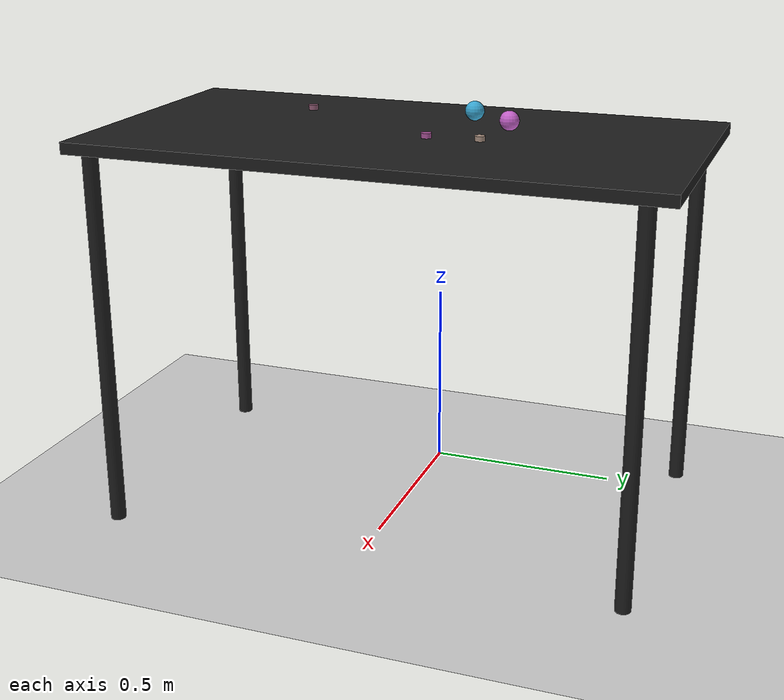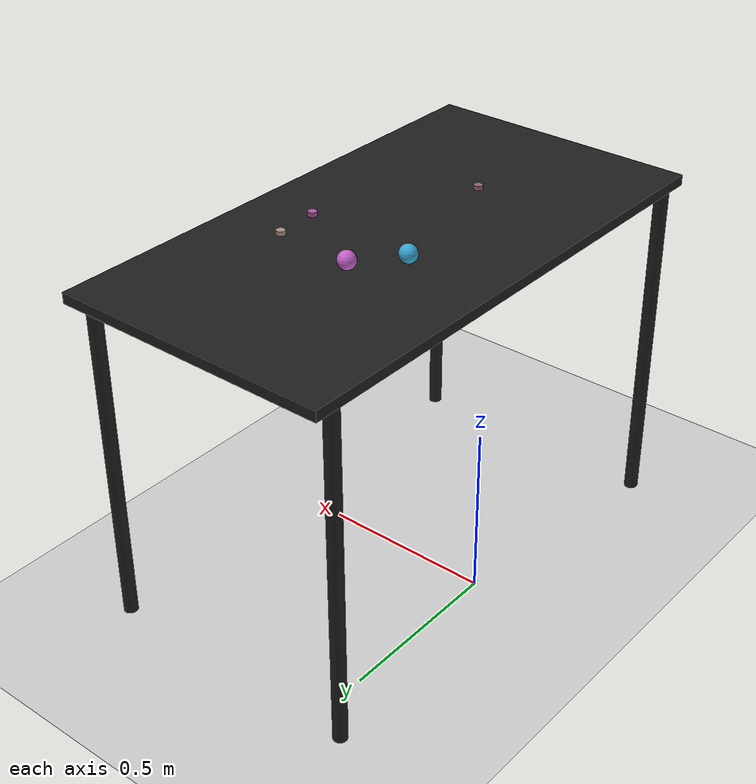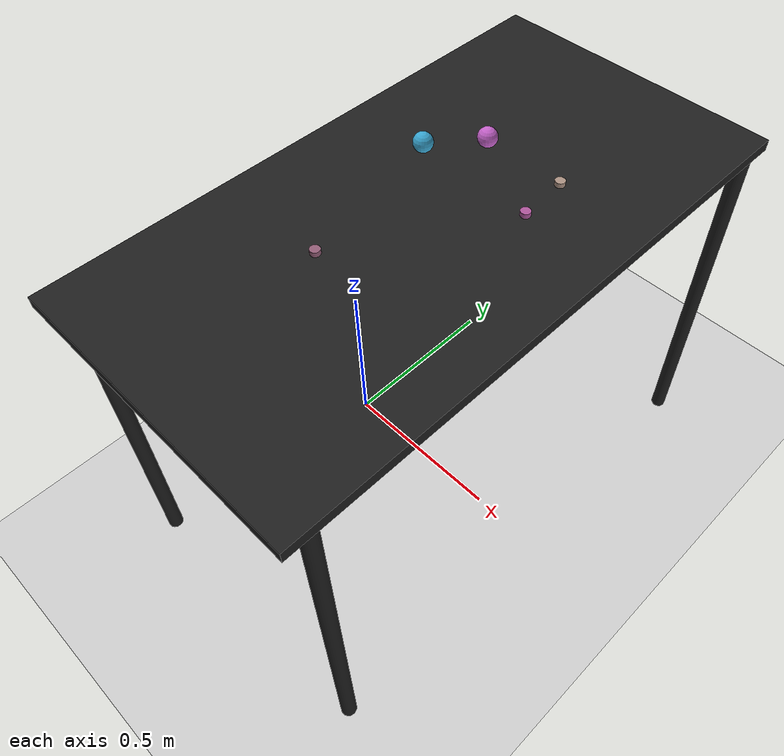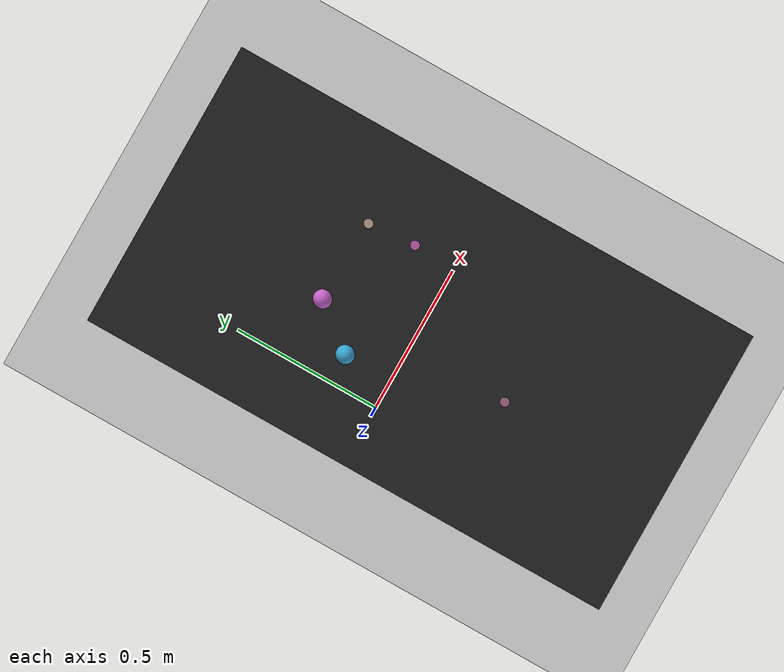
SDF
<?xml version="1.0" ?>
<sdf version="1.6">
  <world name="arm_world">
    <plugin filename="gz-sim-physics-system" name="gz::sim::systems::Physics">
      <engine>
        <filename>libgz-physics-bullet-featherstone-plugin.so</filename>
      </engine>
    </plugin>
    <plugin filename="gz-sim-user-commands-system" name="gz::sim::systems::UserCommands"/>
    <plugin filename="gz-sim-scene-broadcaster-system" name="gz::sim::systems::SceneBroadcaster"/>
    <plugin filename="gz-sim-sensors-system" name="gz::sim::systems::Sensors">
      <render_engine>ogre2</render_engine>
    </plugin>
    <gravity>0.0 0.0 -9.8</gravity>
    <scene>
      <shadows>false</shadows>
    </scene>
    <gui>
      <camera name="user_camera">
        <pose>0.75 -0.75 1.4 0 0.29 2.21</pose>
      </camera>
    </gui>
    <include>
      <uri>https://fuel.gazebosim.org/1.0/OpenRobotics/models/Sun</uri>
    </include>
    <model name="table">
      <static>true</static>
      <include>
        <uri>model://table</uri>
      </include>
      <pose>0.29 0 0 0 0 1.5708</pose>
    </model>
    <model name="ground_plane">
      <static>true</static>
      <link name="link">
        <collision name="collision">
          <geometry>
            <plane>
              <normal>0 0 1</normal>
            </plane>
          </geometry>
          <surface>
            <friction>
              <ode>
                <mu>1.0</mu>
                <mu2>1.0</mu2>
              </ode>
            </friction>
          </surface>
        </collision>
        <visual name="visual">
          <geometry>
            <plane>
              <normal>0 0 1</normal>
              <size>100 100</size>
            </plane>
          </geometry>
          <material>
            <ambient>0.8 0.8 0.8 1</ambient>
            <diffuse>0.8 0.8 0.8 1</diffuse>
            <specular>0.8 0.8 0.8 1</specular>
          </material>
        </visual>
      </link>
    </model>
    <model name="cylinder_s_0">
      <pose>0.233 -0.277 1.05 0 0 6.23</pose>
      <link name="cylinder_s_0_link">
        <inertial>
          <mass>0.05</mass>
          <inertia>
            <ixx>2.04e-7</ixx>
            <iyy>2.04e-7</iyy>
            <izz>3.9e-8</izz>
            <ixy>0</ixy>
            <ixz>0</ixz>
            <iyz>0</iyz>
          </inertia>
        </inertial>
        <collision name="cylinder_s_0_collision">
          <geometry>
            <cylinder>
              <radius>0.0125</radius>
              <length>0.0125</length>
            </cylinder>
          </geometry>
          <surface>
            <friction>
              <ode>
                <mu>0.8</mu>
                <mu2>0.8</mu2>
                <fdir1>0 0 1</fdir1>
                <slip1>0.001</slip1>
                <slip2>0.001</slip2>
              </ode>
              <torsional>
                <coefficient>0.1</coefficient>
                <surface_radius>0.015</surface_radius>
                <use_patch_radius>true</use_patch_radius>
              </torsional>
            </friction>
            <contact>
              <ode>
                <kp>1e5</kp>
                <kd>10</kd>
                <max_vel>0.1</max_vel>
                <min_depth>0.001</min_depth>
                <soft_cfm>0.01</soft_cfm>
                <soft_erp>0.2</soft_erp>
              </ode>
            </contact>
            <bounce>
              <restitution_coefficient>0.2</restitution_coefficient>
              <threshold>0.01</threshold>
            </bounce>
          </surface>
        </collision>
        <visual name="cylinder_s_0_visual">
          <geometry>
            <cylinder>
              <radius>0.0125</radius>
              <length>0.0125</length>
            </cylinder>
          </geometry>
          <material>
            <ambient>0.57 0.36 0.46 1</ambient>
            <diffuse>0.57 0.36 0.46 1</diffuse>
          </material>
        </visual>
        <velocity_decay>
          <linear>1</linear>
          <angular>1</angular>
        </velocity_decay>
      </link>
    </model>
    <model name="sphere_m_1">
      <pose>0.233 0.252 1.05 0 0 4.65</pose>
      <link name="sphere_m_1_link">
        <inertial>
          <mass>0.05</mass>
          <inertia>
            <ixx>2.04e-7</ixx>
            <iyy>2.04e-7</iyy>
            <izz>3.9e-8</izz>
            <ixy>0</ixy>
            <ixz>0</ixz>
            <iyz>0</iyz>
          </inertia>
        </inertial>
        <collision name="sphere_m_1_collision">
          <geometry>
            <sphere>
              <radius>0.025</radius>
            </sphere>
          </geometry>
          <surface>
            <friction>
              <ode>
                <mu>0.8</mu>
                <mu2>0.8</mu2>
                <fdir1>0 0 1</fdir1>
                <slip1>0.001</slip1>
                <slip2>0.001</slip2>
              </ode>
              <torsional>
                <coefficient>0.1</coefficient>
                <surface_radius>0.015</surface_radius>
                <use_patch_radius>true</use_patch_radius>
              </torsional>
            </friction>
            <contact>
              <ode>
                <kp>1e5</kp>
                <kd>10</kd>
                <max_vel>0.1</max_vel>
                <min_depth>0.001</min_depth>
                <soft_cfm>0.01</soft_cfm>
                <soft_erp>0.2</soft_erp>
              </ode>
            </contact>
            <bounce>
              <restitution_coefficient>0.2</restitution_coefficient>
              <threshold>0.01</threshold>
            </bounce>
          </surface>
        </collision>
        <visual name="sphere_m_1_visual">
          <geometry>
            <sphere>
              <radius>0.025</radius>
            </sphere>
          </geometry>
          <material>
            <ambient>0.77 0.38 0.79 1</ambient>
            <diffuse>0.77 0.38 0.79 1</diffuse>
          </material>
        </visual>
        <velocity_decay>
          <linear>1</linear>
          <angular>1</angular>
        </velocity_decay>
      </link>
    </model>
    <model name="cylinder_s_2">
      <pose>0.466 0.115 1.05 0 0 0.97</pose>
      <link name="cylinder_s_2_link">
        <inertial>
          <mass>0.05</mass>
          <inertia>
            <ixx>2.04e-7</ixx>
            <iyy>2.04e-7</iyy>
            <izz>3.9e-8</izz>
            <ixy>0</ixy>
            <ixz>0</ixz>
            <iyz>0</iyz>
          </inertia>
        </inertial>
        <collision name="cylinder_s_2_collision">
          <geometry>
            <cylinder>
              <radius>0.0125</radius>
              <length>0.0125</length>
            </cylinder>
          </geometry>
          <surface>
            <friction>
              <ode>
                <mu>0.8</mu>
                <mu2>0.8</mu2>
                <fdir1>0 0 1</fdir1>
                <slip1>0.001</slip1>
                <slip2>0.001</slip2>
              </ode>
              <torsional>
                <coefficient>0.1</coefficient>
                <surface_radius>0.015</surface_radius>
                <use_patch_radius>true</use_patch_radius>
              </torsional>
            </friction>
            <contact>
              <ode>
                <kp>1e5</kp>
                <kd>10</kd>
                <max_vel>0.1</max_vel>
                <min_depth>0.001</min_depth>
                <soft_cfm>0.01</soft_cfm>
                <soft_erp>0.2</soft_erp>
              </ode>
            </contact>
            <bounce>
              <restitution_coefficient>0.2</restitution_coefficient>
              <threshold>0.01</threshold>
            </bounce>
          </surface>
        </collision>
        <visual name="cylinder_s_2_visual">
          <geometry>
            <cylinder>
              <radius>0.0125</radius>
              <length>0.0125</length>
            </cylinder>
          </geometry>
          <material>
            <ambient>0.67 0.33 0.6 1</ambient>
            <diffuse>0.67 0.33 0.6 1</diffuse>
          </material>
        </visual>
        <velocity_decay>
          <linear>1</linear>
          <angular>1</angular>
        </velocity_decay>
      </link>
    </model>
    <model name="cylinder_s_3">
      <pose>0.456 0.244 1.05 0 0 5.43</pose>
      <link name="cylinder_s_3_link">
        <inertial>
          <mass>0.05</mass>
          <inertia>
            <ixx>2.04e-7</ixx>
            <iyy>2.04e-7</iyy>
            <izz>3.9e-8</izz>
            <ixy>0</ixy>
            <ixz>0</ixz>
            <iyz>0</iyz>
          </inertia>
        </inertial>
        <collision name="cylinder_s_3_collision">
          <geometry>
            <cylinder>
              <radius>0.0125</radius>
              <length>0.0125</length>
            </cylinder>
          </geometry>
          <surface>
            <friction>
              <ode>
                <mu>0.8</mu>
                <mu2>0.8</mu2>
                <fdir1>0 0 1</fdir1>
                <slip1>0.001</slip1>
                <slip2>0.001</slip2>
              </ode>
              <torsional>
                <coefficient>0.1</coefficient>
                <surface_radius>0.015</surface_radius>
                <use_patch_radius>true</use_patch_radius>
              </torsional>
            </friction>
            <contact>
              <ode>
                <kp>1e5</kp>
                <kd>10</kd>
                <max_vel>0.1</max_vel>
                <min_depth>0.001</min_depth>
                <soft_cfm>0.01</soft_cfm>
                <soft_erp>0.2</soft_erp>
              </ode>
            </contact>
            <bounce>
              <restitution_coefficient>0.2</restitution_coefficient>
              <threshold>0.01</threshold>
            </bounce>
          </surface>
        </collision>
        <visual name="cylinder_s_3_visual">
          <geometry>
            <cylinder>
              <radius>0.0125</radius>
              <length>0.0125</length>
            </cylinder>
          </geometry>
          <material>
            <ambient>0.66 0.56 0.5 1</ambient>
            <diffuse>0.66 0.56 0.5 1</diffuse>
          </material>
        </visual>
        <velocity_decay>
          <linear>1</linear>
          <angular>1</angular>
        </velocity_decay>
      </link>
    </model>
    <model name="sphere_m_4">
      <pose>0.139 0.133 1.05 0 0 4.38</pose>
      <link name="sphere_m_4_link">
        <inertial>
          <mass>0.05</mass>
          <inertia>
            <ixx>2.04e-7</ixx>
            <iyy>2.04e-7</iyy>
            <izz>3.9e-8</izz>
            <ixy>0</ixy>
            <ixz>0</ixz>
            <iyz>0</iyz>
          </inertia>
        </inertial>
        <collision name="sphere_m_4_collision">
          <geometry>
            <sphere>
              <radius>0.025</radius>
            </sphere>
          </geometry>
          <surface>
            <friction>
              <ode>
                <mu>0.8</mu>
                <mu2>0.8</mu2>
                <fdir1>0 0 1</fdir1>
                <slip1>0.001</slip1>
                <slip2>0.001</slip2>
              </ode>
              <torsional>
                <coefficient>0.1</coefficient>
                <surface_radius>0.015</surface_radius>
                <use_patch_radius>true</use_patch_radius>
              </torsional>
            </friction>
            <contact>
              <ode>
                <kp>1e5</kp>
                <kd>10</kd>
                <max_vel>0.1</max_vel>
                <min_depth>0.001</min_depth>
                <soft_cfm>0.01</soft_cfm>
                <soft_erp>0.2</soft_erp>
              </ode>
            </contact>
            <bounce>
              <restitution_coefficient>0.2</restitution_coefficient>
              <threshold>0.01</threshold>
            </bounce>
          </surface>
        </collision>
        <visual name="sphere_m_4_visual">
          <geometry>
            <sphere>
              <radius>0.025</radius>
            </sphere>
          </geometry>
          <material>
            <ambient>0.22 0.65 0.82 1</ambient>
            <diffuse>0.22 0.65 0.82 1</diffuse>
          </material>
        </visual>
        <velocity_decay>
          <linear>1</linear>
          <angular>1</angular>
        </velocity_decay>
      </link>
    </model>
  </world>
</sdf>

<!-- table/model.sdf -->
<sdf version="1.5">
  <model name="table">
    <static>true</static>
    <link name="link">
      <collision name="surface">
        <pose>0 0 1.0 0 0 0</pose>
        <geometry>
          <box>
            <size>1.5 0.8 0.03</size>
          </box>
        </geometry>
        <surface>
          <friction>
            <ode>
              <mu>0.6</mu>
              <mu2>0.6</mu2>
            </ode>
          </friction>
        </surface>
      </collision>
      <visual name="surface">
        <pose>0 0 1.0 0 0 0</pose>
        <geometry>
          <box>
            <size>1.5 0.8 0.03</size>
          </box>
        </geometry>
        <material>
          <script>
            <uri>file://media/materials/scripts/gazebo.material</uri>
            <name>Gazebo/Black</name>
          </script>
        </material>
      </visual>
      <collision name="front_left_leg">
        <pose>0.68 0.38 0.5 0 0 0</pose>
        <geometry>
          <cylinder>
            <radius>0.02</radius>
            <length>1.0</length>
          </cylinder>
        </geometry>
      </collision>
      <visual name="front_left_leg">
        <pose>0.68 0.38 0.5 0 0 0</pose>
        <geometry>
          <cylinder>
            <radius>0.02</radius>
            <length>1.0</length>
          </cylinder>
        </geometry>
        <material>
          <script>
            <uri>file://media/materials/scripts/gazebo.material</uri>
            <name>Gazebo/Black</name>
          </script>
        </material>
      </visual>
      <collision name="front_right_leg">
        <pose>0.68 -0.38 0.5 0 0 0</pose>
        <geometry>
          <cylinder>
            <radius>0.02</radius>
            <length>1.0</length>
          </cylinder>
        </geometry>
      </collision>
      <visual name="front_right_leg">
        <pose>0.68 -0.38 0.5 0 0 0</pose>
        <geometry>
          <cylinder>
            <radius>0.02</radius>
            <length>1.0</length>
          </cylinder>
        </geometry>
        <material>
          <script>
            <uri>file://media/materials/scripts/gazebo.material</uri>
            <name>Gazebo/Black</name>
          </script>
        </material>
      </visual>
      <collision name="back_right_leg">
        <pose>-0.68 -0.38 0.5 0 0 0</pose>
        <geometry>
          <cylinder>
            <radius>0.02</radius>
            <length>1.0</length>
          </cylinder>
        </geometry>
      </collision>
      <visual name="back_right_leg">
        <pose>-0.68 -0.38 0.5 0 0 0</pose>
        <geometry>
          <cylinder>
            <radius>0.02</radius>
            <length>1.0</length>
          </cylinder>
        </geometry>
        <material>
          <script>
            <uri>file://media/materials/scripts/gazebo.material</uri>
            <name>Gazebo/Black</name>
          </script>
        </material>
      </visual>
      <collision name="back_left_leg">
        <pose>-0.68 0.38 0.5 0 0 0</pose>
        <geometry>
          <cylinder>
            <radius>0.02</radius>
            <length>1.0</length>
          </cylinder>
        </geometry>
      </collision>
      <visual name="back_left_leg">
        <pose>-0.68 0.38 0.5 0 0 0</pose>
        <geometry>
          <cylinder>
            <radius>0.02</radius>
            <length>1.0</length>
          </cylinder>
        </geometry>
        <material>
          <script>
            <uri>file://media/materials/scripts/gazebo.material</uri>
            <name>Gazebo/Black</name>
          </script>
        </material>
      </visual>
    </link>
  </model>
</sdf>
